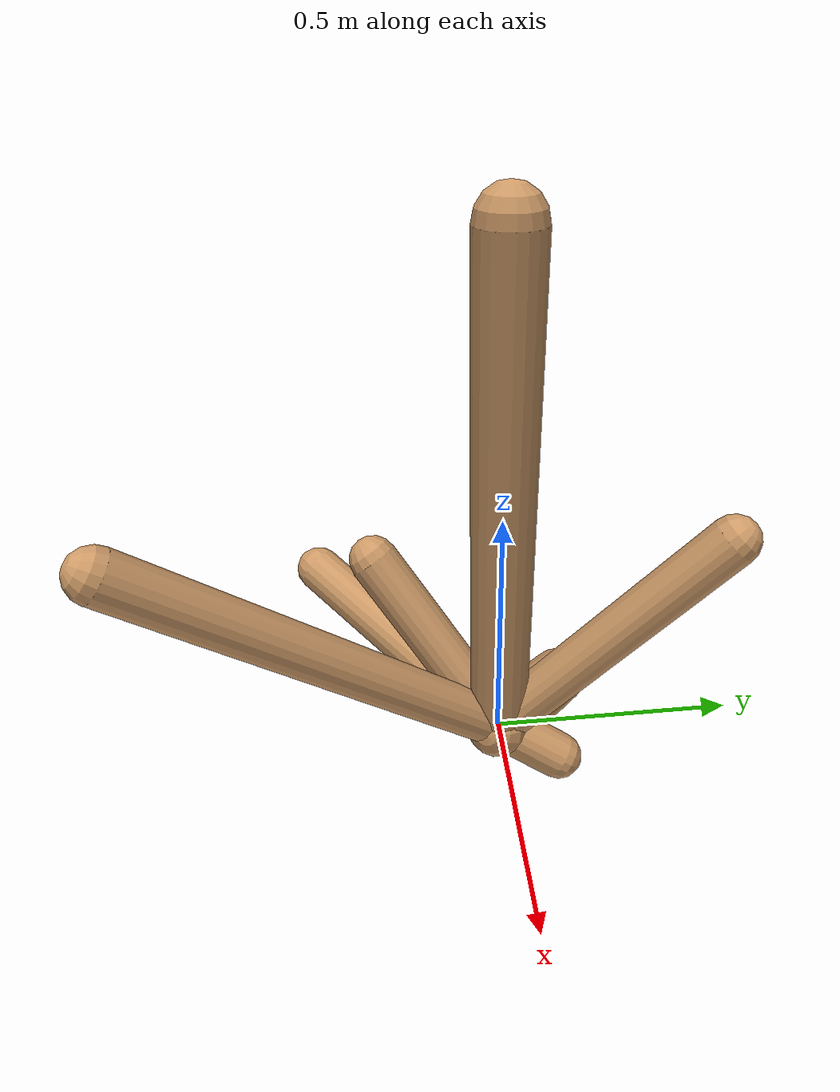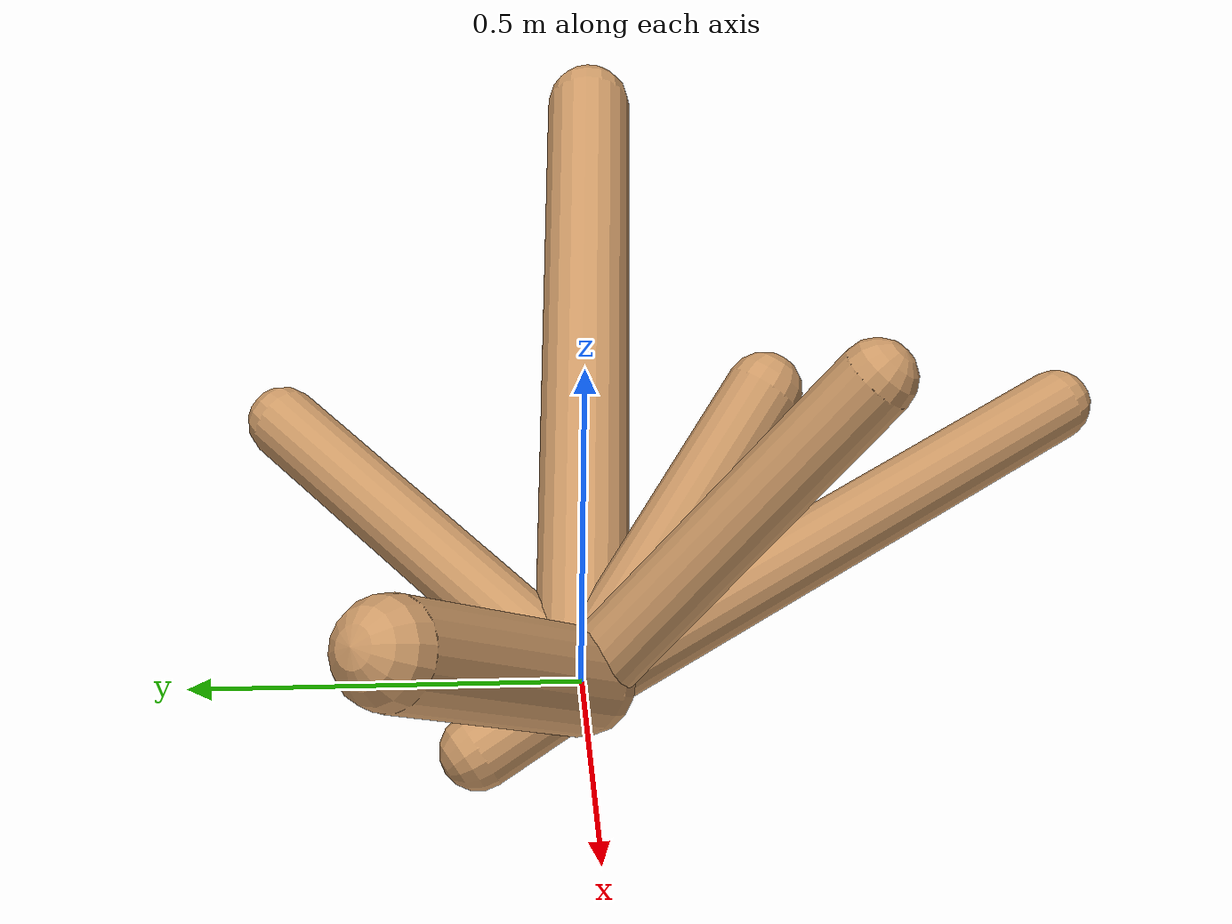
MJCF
<!--
                    joint_number: 6
                    -->
                    <mujoco model="randomrobot">
                        <compiler angle="degree" coordinate="global" inertiafromgeom="true"/>
                        <default>
                        <joint armature="0.01" damping=".1" limited="true"/>
                        <geom conaffinity="0" condim="3" contype="1" density="1000" friction="0.8 .1 .1" rgba="0.8 0.6 .4 1"/>
                        </default>
                        <option integrator="RK4" timestep="0.002"/>
                        <worldbody>
                    <body name='torso' pos='0.00 0.00 0.60'><geom fromto='0 0 0 0.00 0.00 1.00' name='torso_geom' size='0.06' type='capsule'/><inertial mass='0.3'/><body name='L0_D1' pos='0.00 0.00 0.85'><joint axis='1 0 0' name='L0_D1_joint' pos='0 0 0' range='5.85 157.04' type='hinge'/><geom fromto='0 0 0 0.03 0.13 -0.08' name='L0_D1_geom' size='0.05' type='capsule'/><inertial mass='0.3'/><body name='L1_D0' pos='0.02 0.09 -0.06'><joint axis='0 1 0' name='L1_D0_joint' pos='0 0 0' range='36.04 179.74' type='hinge'/><geom fromto='0 0 0 -0.36 -0.37 0.19' name='L1_D0_geom' size='0.05' type='capsule'/><inertial mass='0.3'/></body></body><body name='L2_D1' pos='0.00 0.00 0.70'><joint axis='1 0 0' name='L2_D1_joint' pos='0 0 0' range='35.18 123.13' type='hinge'/><geom fromto='0 0 0 -0.30 0.20 -0.14' name='L2_D1_geom' size='0.07' type='capsule'/><inertial mass='0.3'/></body><body name='L3_D1' pos='0.00 0.00 0.93'><joint axis='0 0 1' name='L3_D1_joint' pos='0 0 0' range='97.00 112.11' type='hinge'/><geom fromto='0 0 0 -0.15 -0.24 0.34' name='L3_D1_geom' size='0.05' type='capsule'/><inertial mass='0.3'/></body><body name='L4_D1' pos='0.00 0.00 0.52'><joint axis='1 0 0' name='L4_D1_joint' pos='0 0 0' range='11.63 110.32' type='hinge'/><geom fromto='0 0 0 0.16 -0.66 0.54' name='L4_D1_geom' size='0.05' type='capsule'/><inertial mass='0.3'/><body name='L5_D0' pos='0.14 -0.60 0.49'><joint axis='0 0 1' name='L5_D0_joint' pos='0 0 0' range='53.15 54.66' type='hinge'/><geom fromto='0 0 0 0.05 0.42 0.46' name='L5_D0_geom' size='0.05' type='capsule'/><inertial mass='0.3'/></body></body></body>
                        </worldbody>
                    </mujoco>
